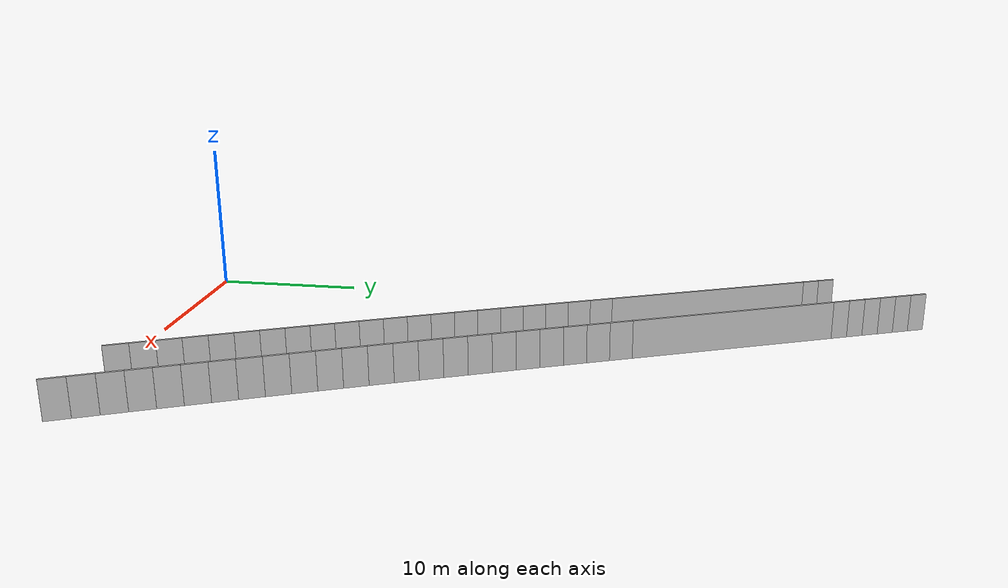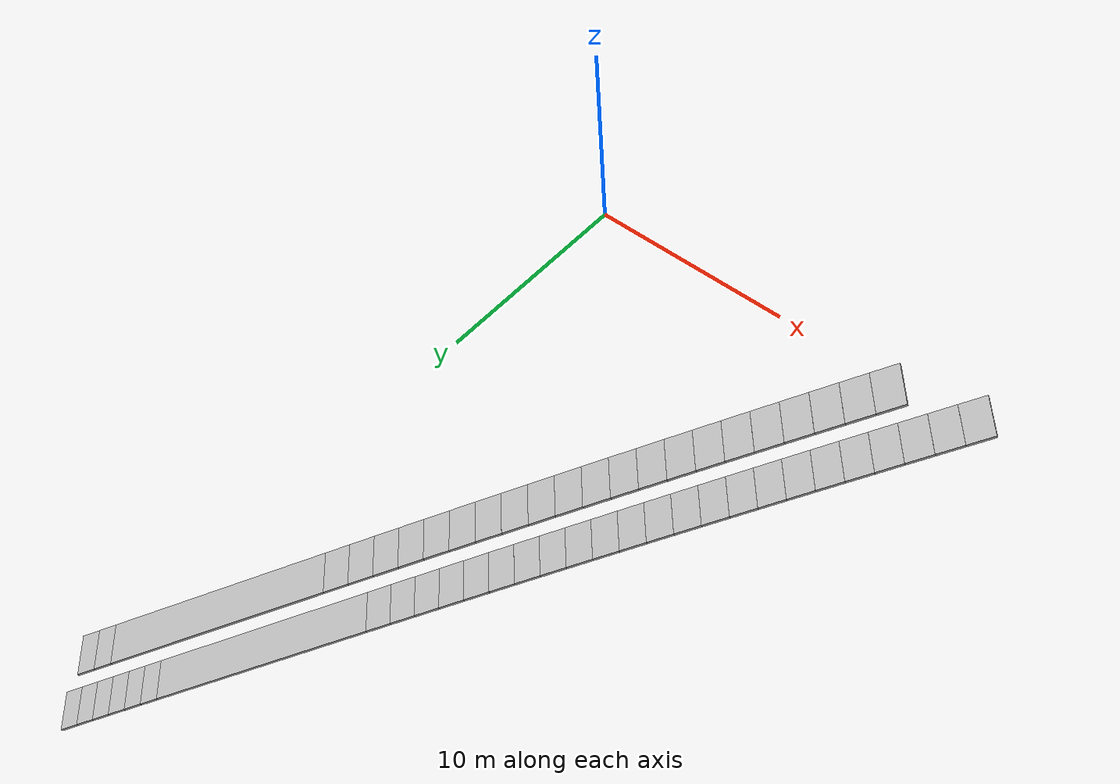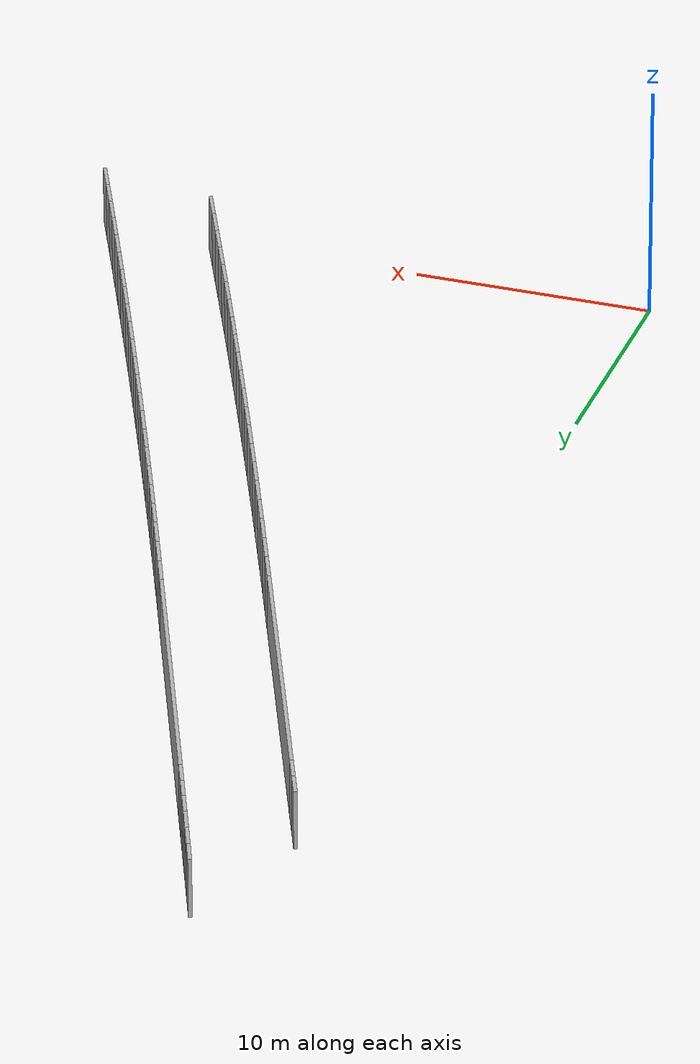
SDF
<?xml version="1.0" ?>
<sdf version="1.6">
  <model name="sps_0515">
    <pose frame="">0 0 0 0 -0 0</pose>
    <static>1</static>
    <self_collide>0</self_collide>
    <allow_auto_disable>0</allow_auto_disable>
    <link name="Wall269">
      <kinematic>0</kinematic>
      <gravity>1</gravity>
      <self_collide>0</self_collide>
      <collision name="collision">
        <geometry>
          <box>
            <size>13.7165 0.15 2.5</size>
          </box>
        </geometry>
        <pose frame="">0 0 0 0 -0 0</pose>
      </collision>
      <visual name="visual">
        <geometry>
          <box>
            <size>13.7165 0.15 2.5</size>
          </box>
        </geometry>
        <pose frame="">0 0 0 0 -0 0</pose>
        <cast_shadows>1</cast_shadows>
        <transparency>0.0</transparency>
      </visual>
      <pose frame="">3.66225 35.8426 1.25 0 0 -1.17761</pose>
    </link>
    <link name="Wall595">
      <kinematic>0</kinematic>
      <gravity>1</gravity>
      <self_collide>0</self_collide>
      <collision name="collision">
        <geometry>
          <box>
            <size>13.7266 0.15 2.5</size>
          </box>
        </geometry>
        <pose frame="">0 0 0 0 -0 0</pose>
      </collision>
      <visual name="visual">
        <geometry>
          <box>
            <size>13.7266 0.15 2.5</size>
          </box>
        </geometry>
        <pose frame="">0 0 0 0 -0 0</pose>
        <cast_shadows>1</cast_shadows>
        <transparency>0.0</transparency>
      </visual>
      <pose frame="">7.48565 37.4298 1.25 0 -0 1.96409</pose>
    </link>
    <link name="Wall4745">
      <kinematic>0</kinematic>
      <gravity>1</gravity>
      <self_collide>0</self_collide>
      <collision name="collision">
        <geometry>
          <box>
            <size>1.12142 0.15 2.5</size>
          </box>
        </geometry>
        <pose frame="">0 0 0 0 -0 0</pose>
      </collision>
      <visual name="visual">
        <geometry>
          <box>
            <size>1.12142 0.15 2.5</size>
          </box>
        </geometry>
        <pose frame="">0 0 0 0 -0 0</pose>
        <cast_shadows>1</cast_shadows>
        <transparency>0.0</transparency>
      </visual>
      <pose frame="">2.50286 49.4705 1.25 0 0 -1.1827</pose>
    </link>
    <link name="Wall4746">
      <kinematic>0</kinematic>
      <gravity>1</gravity>
      <self_collide>0</self_collide>
      <collision name="collision">
        <geometry>
          <box>
            <size>1.12149 0.15 2.5</size>
          </box>
        </geometry>
        <pose frame="">0 0 0 0 -0 0</pose>
      </collision>
      <visual name="visual">
        <geometry>
          <box>
            <size>1.12149 0.15 2.5</size>
          </box>
        </geometry>
        <pose frame="">0 0 0 0 -0 0</pose>
        <cast_shadows>1</cast_shadows>
        <transparency>0.0</transparency>
      </visual>
      <pose frame="">2.92785 48.4327 1.25 0 0 -1.18155</pose>
    </link>
    <link name="Wall4747">
      <kinematic>0</kinematic>
      <gravity>1</gravity>
      <self_collide>0</self_collide>
      <collision name="collision">
        <geometry>
          <box>
            <size>1.12122 0.15 2.5</size>
          </box>
        </geometry>
        <pose frame="">0 0 0 0 -0 0</pose>
      </collision>
      <visual name="visual">
        <geometry>
          <box>
            <size>1.12122 0.15 2.5</size>
          </box>
        </geometry>
        <pose frame="">0 0 0 0 -0 0</pose>
        <cast_shadows>1</cast_shadows>
        <transparency>0.0</transparency>
      </visual>
      <pose frame="">3.35406 47.3955 1.25 0 0 -1.18027</pose>
    </link>
    <link name="Wall4748">
      <kinematic>0</kinematic>
      <gravity>1</gravity>
      <self_collide>0</self_collide>
      <collision name="collision">
        <geometry>
          <box>
            <size>1.12156 0.15 2.5</size>
          </box>
        </geometry>
        <pose frame="">0 0 0 0 -0 0</pose>
      </collision>
      <visual name="visual">
        <geometry>
          <box>
            <size>1.12156 0.15 2.5</size>
          </box>
        </geometry>
        <pose frame="">0 0 0 0 -0 0</pose>
        <cast_shadows>1</cast_shadows>
        <transparency>0.0</transparency>
      </visual>
      <pose frame="">3.78155 46.3588 1.25 0 0 -1.1791</pose>
    </link>
    <link name="Wall4749">
      <kinematic>0</kinematic>
      <gravity>1</gravity>
      <self_collide>0</self_collide>
      <collision name="collision">
        <geometry>
          <box>
            <size>1.12134 0.15 2.5</size>
          </box>
        </geometry>
        <pose frame="">0 0 0 0 -0 0</pose>
      </collision>
      <visual name="visual">
        <geometry>
          <box>
            <size>1.12134 0.15 2.5</size>
          </box>
        </geometry>
        <pose frame="">0 0 0 0 -0 0</pose>
        <cast_shadows>1</cast_shadows>
        <transparency>0.0</transparency>
      </visual>
      <pose frame="">4.21023 45.3225 1.25 0 0 -1.17802</pose>
    </link>
    <link name="Wall4750">
      <kinematic>0</kinematic>
      <gravity>1</gravity>
      <self_collide>0</self_collide>
      <collision name="collision">
        <geometry>
          <box>
            <size>1.12137 0.15 2.5</size>
          </box>
        </geometry>
        <pose frame="">0 0 0 0 -0 0</pose>
      </collision>
      <visual name="visual">
        <geometry>
          <box>
            <size>1.12137 0.15 2.5</size>
          </box>
        </geometry>
        <pose frame="">0 0 0 0 -0 0</pose>
        <cast_shadows>1</cast_shadows>
        <transparency>0.0</transparency>
      </visual>
      <pose frame="">4.64013 44.2868 1.25 0 0 -1.17668</pose>
    </link>
    <link name="Wall8264">
      <kinematic>0</kinematic>
      <gravity>1</gravity>
      <self_collide>0</self_collide>
      <collision name="collision">
        <geometry>
          <box>
            <size>1.49891 0.15 2.5</size>
          </box>
        </geometry>
        <pose frame="">0 0 0 0 -0 0</pose>
      </collision>
      <visual name="visual">
        <geometry>
          <box>
            <size>1.49891 0.15 2.5</size>
          </box>
        </geometry>
        <pose frame="">0 0 0 0 -0 0</pose>
        <cast_shadows>1</cast_shadows>
        <transparency>0.0</transparency>
      </visual>
      <pose frame="">6.57696 28.8154 1.25 0 0 -1.1777</pose>
    </link>
    <link name="Wall8265">
      <kinematic>0</kinematic>
      <gravity>1</gravity>
      <self_collide>0</self_collide>
      <collision name="collision">
        <geometry>
          <box>
            <size>1.49903 0.15 2.5</size>
          </box>
        </geometry>
        <pose frame="">0 0 0 0 -0 0</pose>
      </collision>
      <visual name="visual">
        <geometry>
          <box>
            <size>1.49903 0.15 2.5</size>
          </box>
        </geometry>
        <pose frame="">0 0 0 0 -0 0</pose>
        <cast_shadows>1</cast_shadows>
        <transparency>0.0</transparency>
      </visual>
      <pose frame="">7.15215 27.4312 1.25 0 0 -1.17623</pose>
    </link>
    <link name="Wall8266">
      <kinematic>0</kinematic>
      <gravity>1</gravity>
      <self_collide>0</self_collide>
      <collision name="collision">
        <geometry>
          <box>
            <size>1.49916 0.15 2.5</size>
          </box>
        </geometry>
        <pose frame="">0 0 0 0 -0 0</pose>
      </collision>
      <visual name="visual">
        <geometry>
          <box>
            <size>1.49916 0.15 2.5</size>
          </box>
        </geometry>
        <pose frame="">0 0 0 0 -0 0</pose>
        <cast_shadows>1</cast_shadows>
        <transparency>0.0</transparency>
      </visual>
      <pose frame="">7.72958 26.0478 1.25 0 0 -1.17455</pose>
    </link>
    <link name="Wall8267">
      <kinematic>0</kinematic>
      <gravity>1</gravity>
      <self_collide>0</self_collide>
      <collision name="collision">
        <geometry>
          <box>
            <size>1.49886 0.15 2.5</size>
          </box>
        </geometry>
        <pose frame="">0 0 0 0 -0 0</pose>
      </collision>
      <visual name="visual">
        <geometry>
          <box>
            <size>1.49886 0.15 2.5</size>
          </box>
        </geometry>
        <pose frame="">0 0 0 0 -0 0</pose>
        <cast_shadows>1</cast_shadows>
        <transparency>0.0</transparency>
      </visual>
      <pose frame="">8.30926 24.6654 1.25 0 0 -1.17292</pose>
    </link>
    <link name="Wall8268">
      <kinematic>0</kinematic>
      <gravity>1</gravity>
      <self_collide>0</self_collide>
      <collision name="collision">
        <geometry>
          <box>
            <size>1.49916 0.15 2.5</size>
          </box>
        </geometry>
        <pose frame="">0 0 0 0 -0 0</pose>
      </collision>
      <visual name="visual">
        <geometry>
          <box>
            <size>1.49916 0.15 2.5</size>
          </box>
        </geometry>
        <pose frame="">0 0 0 0 -0 0</pose>
        <cast_shadows>1</cast_shadows>
        <transparency>0.0</transparency>
      </visual>
      <pose frame="">8.89104 23.2839 1.25 0 0 -1.1715</pose>
    </link>
    <link name="Wall8269">
      <kinematic>0</kinematic>
      <gravity>1</gravity>
      <self_collide>0</self_collide>
      <collision name="collision">
        <geometry>
          <box>
            <size>1.49879 0.15 2.5</size>
          </box>
        </geometry>
        <pose frame="">0 0 0 0 -0 0</pose>
      </collision>
      <visual name="visual">
        <geometry>
          <box>
            <size>1.49879 0.15 2.5</size>
          </box>
        </geometry>
        <pose frame="">0 0 0 0 -0 0</pose>
        <cast_shadows>1</cast_shadows>
        <transparency>0.0</transparency>
      </visual>
      <pose frame="">9.47485 21.9033 1.25 0 0 -1.16998</pose>
    </link>
    <link name="Wall8270">
      <kinematic>0</kinematic>
      <gravity>1</gravity>
      <self_collide>0</self_collide>
      <collision name="collision">
        <geometry>
          <box>
            <size>1.49896 0.15 2.5</size>
          </box>
        </geometry>
        <pose frame="">0 0 0 0 -0 0</pose>
      </collision>
      <visual name="visual">
        <geometry>
          <box>
            <size>1.49896 0.15 2.5</size>
          </box>
        </geometry>
        <pose frame="">0 0 0 0 -0 0</pose>
        <cast_shadows>1</cast_shadows>
        <transparency>0.0</transparency>
      </visual>
      <pose frame="">10.0608 20.5237 1.25 0 0 -1.16826</pose>
    </link>
    <link name="Wall8271">
      <kinematic>0</kinematic>
      <gravity>1</gravity>
      <self_collide>0</self_collide>
      <collision name="collision">
        <geometry>
          <box>
            <size>1.49898 0.15 2.5</size>
          </box>
        </geometry>
        <pose frame="">0 0 0 0 -0 0</pose>
      </collision>
      <visual name="visual">
        <geometry>
          <box>
            <size>1.49898 0.15 2.5</size>
          </box>
        </geometry>
        <pose frame="">0 0 0 0 -0 0</pose>
        <cast_shadows>1</cast_shadows>
        <transparency>0.0</transparency>
      </visual>
      <pose frame="">10.6492 19.145 1.25 0 0 -1.16667</pose>
    </link>
    <link name="Wall8272">
      <kinematic>0</kinematic>
      <gravity>1</gravity>
      <self_collide>0</self_collide>
      <collision name="collision">
        <geometry>
          <box>
            <size>1.49896 0.15 2.5</size>
          </box>
        </geometry>
        <pose frame="">0 0 0 0 -0 0</pose>
      </collision>
      <visual name="visual">
        <geometry>
          <box>
            <size>1.49896 0.15 2.5</size>
          </box>
        </geometry>
        <pose frame="">0 0 0 0 -0 0</pose>
        <cast_shadows>1</cast_shadows>
        <transparency>0.0</transparency>
      </visual>
      <pose frame="">11.2396 17.7672 1.25 0 0 -1.16525</pose>
    </link>
    <link name="Wall8273">
      <kinematic>0</kinematic>
      <gravity>1</gravity>
      <self_collide>0</self_collide>
      <collision name="collision">
        <geometry>
          <box>
            <size>1.49886 0.15 2.5</size>
          </box>
        </geometry>
        <pose frame="">0 0 0 0 -0 0</pose>
      </collision>
      <visual name="visual">
        <geometry>
          <box>
            <size>1.49886 0.15 2.5</size>
          </box>
        </geometry>
        <pose frame="">0 0 0 0 -0 0</pose>
        <cast_shadows>1</cast_shadows>
        <transparency>0.0</transparency>
      </visual>
      <pose frame="">11.8321 16.3904 1.25 0 0 -1.16345</pose>
    </link>
    <link name="Wall8274">
      <kinematic>0</kinematic>
      <gravity>1</gravity>
      <self_collide>0</self_collide>
      <collision name="collision">
        <geometry>
          <box>
            <size>1.49888 0.15 2.5</size>
          </box>
        </geometry>
        <pose frame="">0 0 0 0 -0 0</pose>
      </collision>
      <visual name="visual">
        <geometry>
          <box>
            <size>1.49888 0.15 2.5</size>
          </box>
        </geometry>
        <pose frame="">0 0 0 0 -0 0</pose>
        <cast_shadows>1</cast_shadows>
        <transparency>0.0</transparency>
      </visual>
      <pose frame="">12.427 15.0146 1.25 0 0 -1.16199</pose>
    </link>
    <link name="Wall8275">
      <kinematic>0</kinematic>
      <gravity>1</gravity>
      <self_collide>0</self_collide>
      <collision name="collision">
        <geometry>
          <box>
            <size>1.49899 0.15 2.5</size>
          </box>
        </geometry>
        <pose frame="">0 0 0 0 -0 0</pose>
      </collision>
      <visual name="visual">
        <geometry>
          <box>
            <size>1.49899 0.15 2.5</size>
          </box>
        </geometry>
        <pose frame="">0 0 0 0 -0 0</pose>
        <cast_shadows>1</cast_shadows>
        <transparency>0.0</transparency>
      </visual>
      <pose frame="">13.024 13.6397 1.25 0 0 -1.16029</pose>
    </link>
    <link name="Wall8276">
      <kinematic>0</kinematic>
      <gravity>1</gravity>
      <self_collide>0</self_collide>
      <collision name="collision">
        <geometry>
          <box>
            <size>1.49899 0.15 2.5</size>
          </box>
        </geometry>
        <pose frame="">0 0 0 0 -0 0</pose>
      </collision>
      <visual name="visual">
        <geometry>
          <box>
            <size>1.49899 0.15 2.5</size>
          </box>
        </geometry>
        <pose frame="">0 0 0 0 -0 0</pose>
        <cast_shadows>1</cast_shadows>
        <transparency>0.0</transparency>
      </visual>
      <pose frame="">13.6232 12.2657 1.25 0 0 -1.15887</pose>
    </link>
    <link name="Wall8277">
      <kinematic>0</kinematic>
      <gravity>1</gravity>
      <self_collide>0</self_collide>
      <collision name="collision">
        <geometry>
          <box>
            <size>1.49894 0.15 2.5</size>
          </box>
        </geometry>
        <pose frame="">0 0 0 0 -0 0</pose>
      </collision>
      <visual name="visual">
        <geometry>
          <box>
            <size>1.49894 0.15 2.5</size>
          </box>
        </geometry>
        <pose frame="">0 0 0 0 -0 0</pose>
        <cast_shadows>1</cast_shadows>
        <transparency>0.0</transparency>
      </visual>
      <pose frame="">14.2244 10.8926 1.25 0 0 -1.15721</pose>
    </link>
    <link name="Wall8278">
      <kinematic>0</kinematic>
      <gravity>1</gravity>
      <self_collide>0</self_collide>
      <collision name="collision">
        <geometry>
          <box>
            <size>1.49899 0.15 2.5</size>
          </box>
        </geometry>
        <pose frame="">0 0 0 0 -0 0</pose>
      </collision>
      <visual name="visual">
        <geometry>
          <box>
            <size>1.49899 0.15 2.5</size>
          </box>
        </geometry>
        <pose frame="">0 0 0 0 -0 0</pose>
        <cast_shadows>1</cast_shadows>
        <transparency>0.0</transparency>
      </visual>
      <pose frame="">14.828 9.52049 1.25 0 0 -1.15562</pose>
    </link>
    <link name="Wall8279">
      <kinematic>0</kinematic>
      <gravity>1</gravity>
      <self_collide>0</self_collide>
      <collision name="collision">
        <geometry>
          <box>
            <size>1.49926 0.15 2.5</size>
          </box>
        </geometry>
        <pose frame="">0 0 0 0 -0 0</pose>
      </collision>
      <visual name="visual">
        <geometry>
          <box>
            <size>1.49926 0.15 2.5</size>
          </box>
        </geometry>
        <pose frame="">0 0 0 0 -0 0</pose>
        <cast_shadows>1</cast_shadows>
        <transparency>0.0</transparency>
      </visual>
      <pose frame="">15.4337 8.14918 1.25 0 0 -1.1541</pose>
    </link>
    <link name="Wall8280">
      <kinematic>0</kinematic>
      <gravity>1</gravity>
      <self_collide>0</self_collide>
      <collision name="collision">
        <geometry>
          <box>
            <size>1.4989 0.15 2.5</size>
          </box>
        </geometry>
        <pose frame="">0 0 0 0 -0 0</pose>
      </collision>
      <visual name="visual">
        <geometry>
          <box>
            <size>1.4989 0.15 2.5</size>
          </box>
        </geometry>
        <pose frame="">0 0 0 0 -0 0</pose>
        <cast_shadows>1</cast_shadows>
        <transparency>0.0</transparency>
      </visual>
      <pose frame="">16.0416 6.77888 1.25 0 0 -1.15244</pose>
    </link>
    <link name="Wall8281">
      <kinematic>0</kinematic>
      <gravity>1</gravity>
      <self_collide>0</self_collide>
      <collision name="collision">
        <geometry>
          <box>
            <size>1.49896 0.15 2.5</size>
          </box>
        </geometry>
        <pose frame="">0 0 0 0 -0 0</pose>
      </collision>
      <visual name="visual">
        <geometry>
          <box>
            <size>1.49896 0.15 2.5</size>
          </box>
        </geometry>
        <pose frame="">0 0 0 0 -0 0</pose>
        <cast_shadows>1</cast_shadows>
        <transparency>0.0</transparency>
      </visual>
      <pose frame="">16.6515 5.40968 1.25 0 0 -1.15094</pose>
    </link>
    <link name="Wall8282">
      <kinematic>0</kinematic>
      <gravity>1</gravity>
      <self_collide>0</self_collide>
      <collision name="collision">
        <geometry>
          <box>
            <size>1.49897 0.15 2.5</size>
          </box>
        </geometry>
        <pose frame="">0 0 0 0 -0 0</pose>
      </collision>
      <visual name="visual">
        <geometry>
          <box>
            <size>1.49897 0.15 2.5</size>
          </box>
        </geometry>
        <pose frame="">0 0 0 0 -0 0</pose>
        <cast_shadows>1</cast_shadows>
        <transparency>0.0</transparency>
      </visual>
      <pose frame="">17.2637 4.0414 1.25 0 0 -1.14933</pose>
    </link>
    <link name="Wall8283">
      <kinematic>0</kinematic>
      <gravity>1</gravity>
      <self_collide>0</self_collide>
      <collision name="collision">
        <geometry>
          <box>
            <size>1.49895 0.15 2.5</size>
          </box>
        </geometry>
        <pose frame="">0 0 0 0 -0 0</pose>
      </collision>
      <visual name="visual">
        <geometry>
          <box>
            <size>1.49895 0.15 2.5</size>
          </box>
        </geometry>
        <pose frame="">0 0 0 0 -0 0</pose>
        <cast_shadows>1</cast_shadows>
        <transparency>0.0</transparency>
      </visual>
      <pose frame="">17.878 2.67409 1.25 0 0 -1.14777</pose>
    </link>
    <link name="Wall8284">
      <kinematic>0</kinematic>
      <gravity>1</gravity>
      <self_collide>0</self_collide>
      <collision name="collision">
        <geometry>
          <box>
            <size>1.49886 0.15 2.5</size>
          </box>
        </geometry>
        <pose frame="">0 0 0 0 -0 0</pose>
      </collision>
      <visual name="visual">
        <geometry>
          <box>
            <size>1.49886 0.15 2.5</size>
          </box>
        </geometry>
        <pose frame="">0 0 0 0 -0 0</pose>
        <cast_shadows>1</cast_shadows>
        <transparency>0.0</transparency>
      </visual>
      <pose frame="">18.4943 1.30778 1.25 0 0 -1.14622</pose>
    </link>
    <link name="Wall9337">
      <kinematic>0</kinematic>
      <gravity>1</gravity>
      <self_collide>0</self_collide>
      <collision name="collision">
        <geometry>
          <box>
            <size>1.1264 0.15 2.5</size>
          </box>
        </geometry>
        <pose frame="">0 0 0 0 -0 0</pose>
      </collision>
      <visual name="visual">
        <geometry>
          <box>
            <size>1.1264 0.15 2.5</size>
          </box>
        </geometry>
        <pose frame="">0 0 0 0 -0 0</pose>
        <cast_shadows>1</cast_shadows>
        <transparency>0.0</transparency>
      </visual>
      <pose frame="">0.386649 43.7378 1.25 0 0 -1.17794</pose>
    </link>
    <link name="Wall9338">
      <kinematic>0</kinematic>
      <gravity>1</gravity>
      <self_collide>0</self_collide>
      <collision name="collision">
        <geometry>
          <box>
            <size>1.12628 0.15 2.5</size>
          </box>
        </geometry>
        <pose frame="">0 0 0 0 -0 0</pose>
      </collision>
      <visual name="visual">
        <geometry>
          <box>
            <size>1.12628 0.15 2.5</size>
          </box>
        </geometry>
        <pose frame="">0 0 0 0 -0 0</pose>
        <cast_shadows>1</cast_shadows>
        <transparency>0.0</transparency>
      </visual>
      <pose frame="">0.818443 42.6975 1.25 0 0 -1.17678</pose>
    </link>
    <link name="Wall9345">
      <kinematic>0</kinematic>
      <gravity>1</gravity>
      <self_collide>0</self_collide>
      <collision name="collision">
        <geometry>
          <box>
            <size>1.4924 0.15 2.5</size>
          </box>
        </geometry>
        <pose frame="">0 0 0 0 -0 0</pose>
      </collision>
      <visual name="visual">
        <geometry>
          <box>
            <size>1.4924 0.15 2.5</size>
          </box>
        </geometry>
        <pose frame="">0 0 0 0 -0 0</pose>
        <cast_shadows>1</cast_shadows>
        <transparency>0.0</transparency>
      </visual>
      <pose frame="">10.4017 30.4012 1.25 0 0 -1.17775</pose>
    </link>
    <link name="Wall9346">
      <kinematic>0</kinematic>
      <gravity>1</gravity>
      <self_collide>0</self_collide>
      <collision name="collision">
        <geometry>
          <box>
            <size>1.49238 0.15 2.5</size>
          </box>
        </geometry>
        <pose frame="">0 0 0 0 -0 0</pose>
      </collision>
      <visual name="visual">
        <geometry>
          <box>
            <size>1.49238 0.15 2.5</size>
          </box>
        </geometry>
        <pose frame="">0 0 0 0 -0 0</pose>
        <cast_shadows>1</cast_shadows>
        <transparency>0.0</transparency>
      </visual>
      <pose frame="">10.9743 29.023 1.25 0 0 -1.17629</pose>
    </link>
    <link name="Wall9347">
      <kinematic>0</kinematic>
      <gravity>1</gravity>
      <self_collide>0</self_collide>
      <collision name="collision">
        <geometry>
          <box>
            <size>1.49239 0.15 2.5</size>
          </box>
        </geometry>
        <pose frame="">0 0 0 0 -0 0</pose>
      </collision>
      <visual name="visual">
        <geometry>
          <box>
            <size>1.49239 0.15 2.5</size>
          </box>
        </geometry>
        <pose frame="">0 0 0 0 -0 0</pose>
        <cast_shadows>1</cast_shadows>
        <transparency>0.0</transparency>
      </visual>
      <pose frame="">11.549 27.6457 1.25 0 0 -1.17469</pose>
    </link>
    <link name="Wall9348">
      <kinematic>0</kinematic>
      <gravity>1</gravity>
      <self_collide>0</self_collide>
      <collision name="collision">
        <geometry>
          <box>
            <size>1.49235 0.15 2.5</size>
          </box>
        </geometry>
        <pose frame="">0 0 0 0 -0 0</pose>
      </collision>
      <visual name="visual">
        <geometry>
          <box>
            <size>1.49235 0.15 2.5</size>
          </box>
        </geometry>
        <pose frame="">0 0 0 0 -0 0</pose>
        <cast_shadows>1</cast_shadows>
        <transparency>0.0</transparency>
      </visual>
      <pose frame="">12.126 26.2694 1.25 0 0 -1.17295</pose>
    </link>
    <link name="Wall9349">
      <kinematic>0</kinematic>
      <gravity>1</gravity>
      <self_collide>0</self_collide>
      <collision name="collision">
        <geometry>
          <box>
            <size>1.4924 0.15 2.5</size>
          </box>
        </geometry>
        <pose frame="">0 0 0 0 -0 0</pose>
      </collision>
      <visual name="visual">
        <geometry>
          <box>
            <size>1.4924 0.15 2.5</size>
          </box>
        </geometry>
        <pose frame="">0 0 0 0 -0 0</pose>
        <cast_shadows>1</cast_shadows>
        <transparency>0.0</transparency>
      </visual>
      <pose frame="">12.7052 24.894 1.25 0 0 -1.1715</pose>
    </link>
    <link name="Wall9350">
      <kinematic>0</kinematic>
      <gravity>1</gravity>
      <self_collide>0</self_collide>
      <collision name="collision">
        <geometry>
          <box>
            <size>1.49236 0.15 2.5</size>
          </box>
        </geometry>
        <pose frame="">0 0 0 0 -0 0</pose>
      </collision>
      <visual name="visual">
        <geometry>
          <box>
            <size>1.49236 0.15 2.5</size>
          </box>
        </geometry>
        <pose frame="">0 0 0 0 -0 0</pose>
        <cast_shadows>1</cast_shadows>
        <transparency>0.0</transparency>
      </visual>
      <pose frame="">13.2865 23.5195 1.25 0 0 -1.16989</pose>
    </link>
    <link name="Wall9351">
      <kinematic>0</kinematic>
      <gravity>1</gravity>
      <self_collide>0</self_collide>
      <collision name="collision">
        <geometry>
          <box>
            <size>1.49243 0.15 2.5</size>
          </box>
        </geometry>
        <pose frame="">0 0 0 0 -0 0</pose>
      </collision>
      <visual name="visual">
        <geometry>
          <box>
            <size>1.49243 0.15 2.5</size>
          </box>
        </geometry>
        <pose frame="">0 0 0 0 -0 0</pose>
        <cast_shadows>1</cast_shadows>
        <transparency>0.0</transparency>
      </visual>
      <pose frame="">13.87 22.1459 1.25 0 0 -1.16831</pose>
    </link>
    <link name="Wall9352">
      <kinematic>0</kinematic>
      <gravity>1</gravity>
      <self_collide>0</self_collide>
      <collision name="collision">
        <geometry>
          <box>
            <size>1.49239 0.15 2.5</size>
          </box>
        </geometry>
        <pose frame="">0 0 0 0 -0 0</pose>
      </collision>
      <visual name="visual">
        <geometry>
          <box>
            <size>1.49239 0.15 2.5</size>
          </box>
        </geometry>
        <pose frame="">0 0 0 0 -0 0</pose>
        <cast_shadows>1</cast_shadows>
        <transparency>0.0</transparency>
      </visual>
      <pose frame="">14.4556 20.7732 1.25 0 0 -1.1667</pose>
    </link>
    <link name="Wall9353">
      <kinematic>0</kinematic>
      <gravity>1</gravity>
      <self_collide>0</self_collide>
      <collision name="collision">
        <geometry>
          <box>
            <size>1.49236 0.15 2.5</size>
          </box>
        </geometry>
        <pose frame="">0 0 0 0 -0 0</pose>
      </collision>
      <visual name="visual">
        <geometry>
          <box>
            <size>1.49236 0.15 2.5</size>
          </box>
        </geometry>
        <pose frame="">0 0 0 0 -0 0</pose>
        <cast_shadows>1</cast_shadows>
        <transparency>0.0</transparency>
      </visual>
      <pose frame="">15.0435 19.4015 1.25 0 0 -1.16509</pose>
    </link>
    <link name="Wall9354">
      <kinematic>0</kinematic>
      <gravity>1</gravity>
      <self_collide>0</self_collide>
      <collision name="collision">
        <geometry>
          <box>
            <size>1.49243 0.15 2.5</size>
          </box>
        </geometry>
        <pose frame="">0 0 0 0 -0 0</pose>
      </collision>
      <visual name="visual">
        <geometry>
          <box>
            <size>1.49243 0.15 2.5</size>
          </box>
        </geometry>
        <pose frame="">0 0 0 0 -0 0</pose>
        <cast_shadows>1</cast_shadows>
        <transparency>0.0</transparency>
      </visual>
      <pose frame="">15.6335 18.0307 1.25 0 0 -1.16364</pose>
    </link>
    <link name="Wall9355">
      <kinematic>0</kinematic>
      <gravity>1</gravity>
      <self_collide>0</self_collide>
      <collision name="collision">
        <geometry>
          <box>
            <size>1.49244 0.15 2.5</size>
          </box>
        </geometry>
        <pose frame="">0 0 0 0 -0 0</pose>
      </collision>
      <visual name="visual">
        <geometry>
          <box>
            <size>1.49244 0.15 2.5</size>
          </box>
        </geometry>
        <pose frame="">0 0 0 0 -0 0</pose>
        <cast_shadows>1</cast_shadows>
        <transparency>0.0</transparency>
      </visual>
      <pose frame="">16.2258 16.6608 1.25 0 0 -1.16186</pose>
    </link>
    <link name="Wall9356">
      <kinematic>0</kinematic>
      <gravity>1</gravity>
      <self_collide>0</self_collide>
      <collision name="collision">
        <geometry>
          <box>
            <size>1.49233 0.15 2.5</size>
          </box>
        </geometry>
        <pose frame="">0 0 0 0 -0 0</pose>
      </collision>
      <visual name="visual">
        <geometry>
          <box>
            <size>1.49233 0.15 2.5</size>
          </box>
        </geometry>
        <pose frame="">0 0 0 0 -0 0</pose>
        <cast_shadows>1</cast_shadows>
        <transparency>0.0</transparency>
      </visual>
      <pose frame="">16.8202 15.2919 1.25 0 0 -1.1604</pose>
    </link>
    <link name="Wall9357">
      <kinematic>0</kinematic>
      <gravity>1</gravity>
      <self_collide>0</self_collide>
      <collision name="collision">
        <geometry>
          <box>
            <size>1.49248 0.15 2.5</size>
          </box>
        </geometry>
        <pose frame="">0 0 0 0 -0 0</pose>
      </collision>
      <visual name="visual">
        <geometry>
          <box>
            <size>1.49248 0.15 2.5</size>
          </box>
        </geometry>
        <pose frame="">0 0 0 0 -0 0</pose>
        <cast_shadows>1</cast_shadows>
        <transparency>0.0</transparency>
      </visual>
      <pose frame="">17.4167 13.9239 1.25 0 0 -1.15884</pose>
    </link>
    <link name="Wall9358">
      <kinematic>0</kinematic>
      <gravity>1</gravity>
      <self_collide>0</self_collide>
      <collision name="collision">
        <geometry>
          <box>
            <size>1.49241 0.15 2.5</size>
          </box>
        </geometry>
        <pose frame="">0 0 0 0 -0 0</pose>
      </collision>
      <visual name="visual">
        <geometry>
          <box>
            <size>1.49241 0.15 2.5</size>
          </box>
        </geometry>
        <pose frame="">0 0 0 0 -0 0</pose>
        <cast_shadows>1</cast_shadows>
        <transparency>0.0</transparency>
      </visual>
      <pose frame="">18.0154 12.5568 1.25 0 0 -1.15721</pose>
    </link>
    <link name="Wall9359">
      <kinematic>0</kinematic>
      <gravity>1</gravity>
      <self_collide>0</self_collide>
      <collision name="collision">
        <geometry>
          <box>
            <size>1.49233 0.15 2.5</size>
          </box>
        </geometry>
        <pose frame="">0 0 0 0 -0 0</pose>
      </collision>
      <visual name="visual">
        <geometry>
          <box>
            <size>1.49233 0.15 2.5</size>
          </box>
        </geometry>
        <pose frame="">0 0 0 0 -0 0</pose>
        <cast_shadows>1</cast_shadows>
        <transparency>0.0</transparency>
      </visual>
      <pose frame="">18.6162 11.1907 1.25 0 0 -1.15571</pose>
    </link>
    <link name="Wall9360">
      <kinematic>0</kinematic>
      <gravity>1</gravity>
      <self_collide>0</self_collide>
      <collision name="collision">
        <geometry>
          <box>
            <size>1.49256 0.15 2.5</size>
          </box>
        </geometry>
        <pose frame="">0 0 0 0 -0 0</pose>
      </collision>
      <visual name="visual">
        <geometry>
          <box>
            <size>1.49256 0.15 2.5</size>
          </box>
        </geometry>
        <pose frame="">0 0 0 0 -0 0</pose>
        <cast_shadows>1</cast_shadows>
        <transparency>0.0</transparency>
      </visual>
      <pose frame="">19.2192 9.82548 1.25 0 0 -1.15404</pose>
    </link>
    <link name="Wall9361">
      <kinematic>0</kinematic>
      <gravity>1</gravity>
      <self_collide>0</self_collide>
      <collision name="collision">
        <geometry>
          <box>
            <size>1.49273 0.15 2.5</size>
          </box>
        </geometry>
        <pose frame="">0 0 0 0 -0 0</pose>
      </collision>
      <visual name="visual">
        <geometry>
          <box>
            <size>1.49273 0.15 2.5</size>
          </box>
        </geometry>
        <pose frame="">0 0 0 0 -0 0</pose>
        <cast_shadows>1</cast_shadows>
        <transparency>0.0</transparency>
      </visual>
      <pose frame="">19.8245 8.46107 1.25 0 0 -1.15248</pose>
    </link>
    <link name="Wall9362">
      <kinematic>0</kinematic>
      <gravity>1</gravity>
      <self_collide>0</self_collide>
      <collision name="collision">
        <geometry>
          <box>
            <size>1.49243 0.15 2.5</size>
          </box>
        </geometry>
        <pose frame="">0 0 0 0 -0 0</pose>
      </collision>
      <visual name="visual">
        <geometry>
          <box>
            <size>1.49243 0.15 2.5</size>
          </box>
        </geometry>
        <pose frame="">0 0 0 0 -0 0</pose>
        <cast_shadows>1</cast_shadows>
        <transparency>0.0</transparency>
      </visual>
      <pose frame="">20.4318 7.09767 1.25 0 0 -1.15091</pose>
    </link>
    <link name="Wall9363">
      <kinematic>0</kinematic>
      <gravity>1</gravity>
      <self_collide>0</self_collide>
      <collision name="collision">
        <geometry>
          <box>
            <size>1.49231 0.15 2.5</size>
          </box>
        </geometry>
        <pose frame="">0 0 0 0 -0 0</pose>
      </collision>
      <visual name="visual">
        <geometry>
          <box>
            <size>1.49231 0.15 2.5</size>
          </box>
        </geometry>
        <pose frame="">0 0 0 0 -0 0</pose>
        <cast_shadows>1</cast_shadows>
        <transparency>0.0</transparency>
      </visual>
      <pose frame="">21.0413 5.7354 1.25 0 0 -1.1494</pose>
    </link>
    <link name="Wall9364">
      <kinematic>0</kinematic>
      <gravity>1</gravity>
      <self_collide>0</self_collide>
      <collision name="collision">
        <geometry>
          <box>
            <size>1.49237 0.15 2.5</size>
          </box>
        </geometry>
        <pose frame="">0 0 0 0 -0 0</pose>
      </collision>
      <visual name="visual">
        <geometry>
          <box>
            <size>1.49237 0.15 2.5</size>
          </box>
        </geometry>
        <pose frame="">0 0 0 0 -0 0</pose>
        <cast_shadows>1</cast_shadows>
        <transparency>0.0</transparency>
      </visual>
      <pose frame="">21.6528 4.3741 1.25 0 0 -1.1478</pose>
    </link>
    <link name="Wall9365">
      <kinematic>0</kinematic>
      <gravity>1</gravity>
      <self_collide>0</self_collide>
      <collision name="collision">
        <geometry>
          <box>
            <size>1.49233 0.15 2.5</size>
          </box>
        </geometry>
        <pose frame="">0 0 0 0 -0 0</pose>
      </collision>
      <visual name="visual">
        <geometry>
          <box>
            <size>1.49233 0.15 2.5</size>
          </box>
        </geometry>
        <pose frame="">0 0 0 0 -0 0</pose>
        <cast_shadows>1</cast_shadows>
        <transparency>0.0</transparency>
      </visual>
      <pose frame="">22.2665 3.01378 1.25 0 0 -1.14617</pose>
    </link>
    <link name="Wall9366">
      <kinematic>0</kinematic>
      <gravity>1</gravity>
      <self_collide>0</self_collide>
      <collision name="collision">
        <geometry>
          <box>
            <size>1.49229 0.15 2.5</size>
          </box>
        </geometry>
        <pose frame="">0 0 0 0 -0 0</pose>
      </collision>
      <visual name="visual">
        <geometry>
          <box>
            <size>1.49229 0.15 2.5</size>
          </box>
        </geometry>
        <pose frame="">0 0 0 0 -0 0</pose>
        <cast_shadows>1</cast_shadows>
        <transparency>0.0</transparency>
      </visual>
      <pose frame="">22.8824 1.65449 1.25 0 0 -1.14454</pose>
    </link>
    <link name="Wall9367">
      <kinematic>0</kinematic>
      <gravity>1</gravity>
      <self_collide>0</self_collide>
      <collision name="collision">
        <geometry>
          <box>
            <size>1.49254 0.15 2.5</size>
          </box>
        </geometry>
        <pose frame="">0 0 0 0 -0 0</pose>
      </collision>
      <visual name="visual">
        <geometry>
          <box>
            <size>1.49254 0.15 2.5</size>
          </box>
        </geometry>
        <pose frame="">0 0 0 0 -0 0</pose>
        <cast_shadows>1</cast_shadows>
        <transparency>0.0</transparency>
      </visual>
      <pose frame="">23.5005 0.296096 1.25 0 0 -1.143</pose>
    </link>
  </model>
</sdf>
